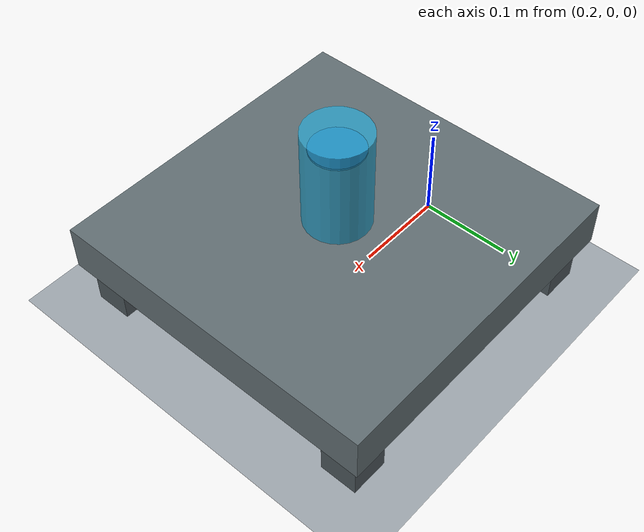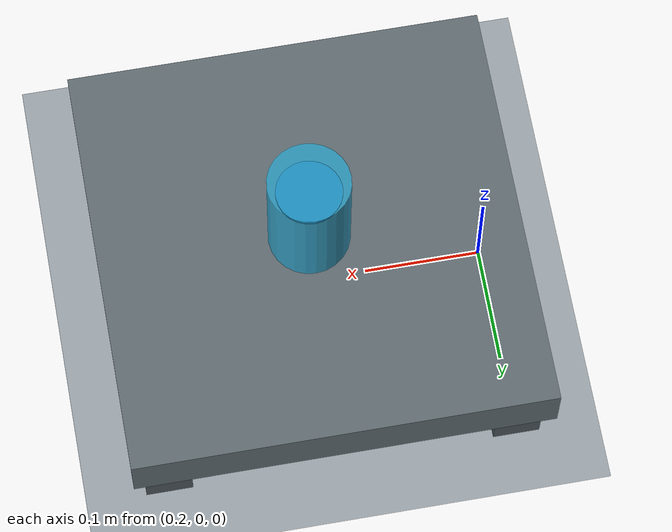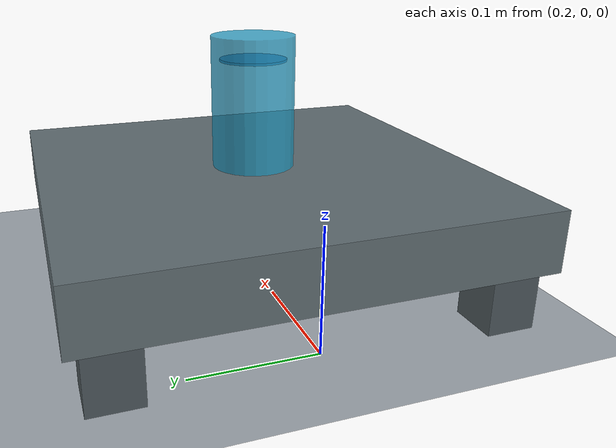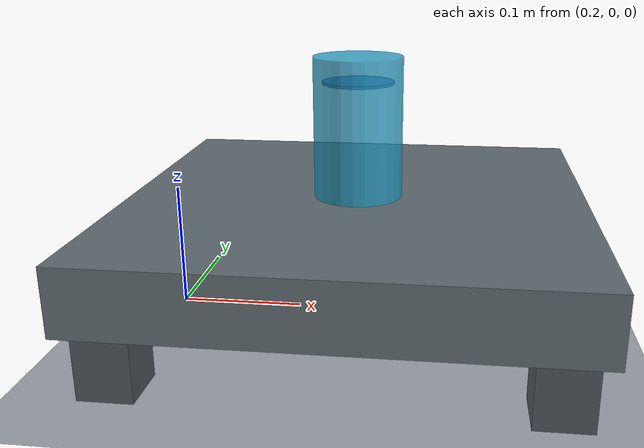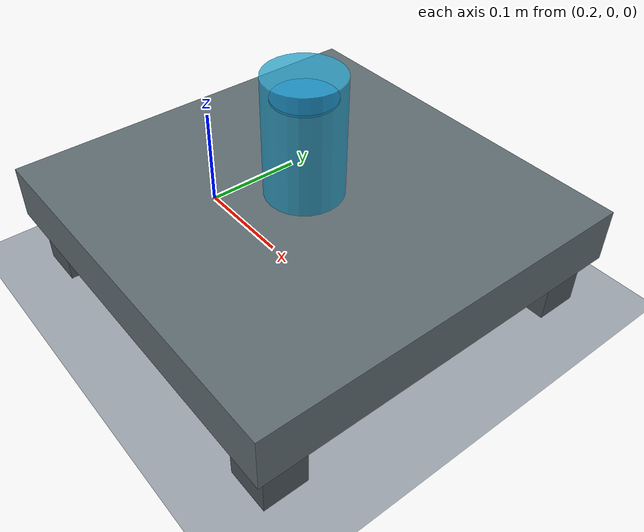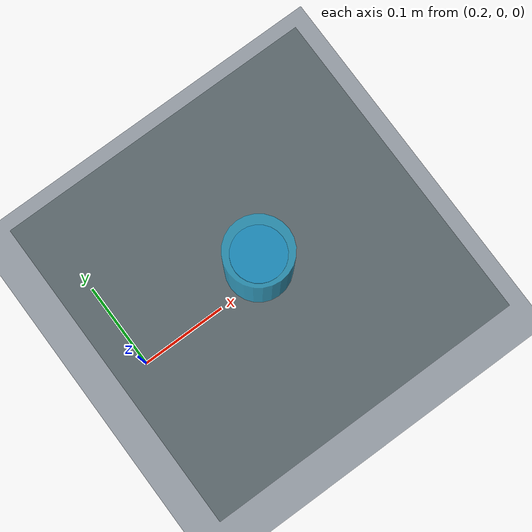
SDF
<?xml version="1.0"?>
<sdf version="1.9">
  <world name="empty">
    <physics name="1ms" type="ignored">
      <max_step_size>0.001</max_step_size>
      <real_time_factor>1.0</real_time_factor>
    </physics>
    <plugin filename="gz-sim-physics-system" name="gz::sim::systems::Physics"/>
    <plugin filename="gz-sim-user-commands-system" name="gz::sim::systems::UserCommands"/>
    <plugin filename="gz-sim-scene-broadcaster-system" name="gz::sim::systems::SceneBroadcaster"/>
    <plugin filename="gz-sim-sensors-system" name="gz::sim::systems::Sensors">
      <render_engine>ogre2</render_engine>
    </plugin>
    <scene>
      <ambient>0.55 0.55 0.55 1</ambient>
      <background>0.82 0.86 0.90 1</background>
      <shadows>true</shadows>
    </scene>
    <light name="sun" type="directional">
      <pose>0 0 3 0 0 0</pose>
      <cast_shadows>true</cast_shadows>
      <direction>-0.4 0.2 -1</direction>
      <diffuse>0.85 0.82 0.75 1</diffuse>
      <specular>0.25 0.25 0.25 1</specular>
    </light>
    <model name="ground_plane">
      <static>true</static>
      <link name="ground_link">
        <collision name="ground_collision">
          <geometry><plane><normal>0 0 1</normal><size>10 10</size></plane></geometry>
        </collision>
        <visual name="ground_visual">
          <geometry><plane><normal>0 0 1</normal><size>10 10</size></plane></geometry>
          <material>
            <ambient>0.52 0.55 0.58 1</ambient>
            <diffuse>0.62 0.65 0.68 1</diffuse>
          </material>
        </visual>
      </link>
    </model>
    <model name="work_table">
      <static>true</static>
      <pose>0.35 0 0 0 0 0</pose>
      <link name="table_link">
        <collision name="top_collision">
          <pose>0 0 0.075 0 0 0</pose>
          <geometry><box><size>0.36 0.36 0.05</size></box></geometry>
        </collision>
        <visual name="top_visual">
          <pose>0 0 0.075 0 0 0</pose>
          <geometry><box><size>0.36 0.36 0.05</size></box></geometry>
          <material><ambient>0.30 0.34 0.36 1</ambient><diffuse>0.38 0.43 0.45 1</diffuse></material>
        </visual>
        <collision name="leg_front_left_collision">
          <pose>-0.15 -0.15 0.025 0 0 0</pose>
          <geometry><box><size>0.04 0.04 0.05</size></box></geometry>
        </collision>
        <visual name="leg_front_left_visual">
          <pose>-0.15 -0.15 0.025 0 0 0</pose>
          <geometry><box><size>0.04 0.04 0.05</size></box></geometry>
          <material><ambient>0.24 0.27 0.29 1</ambient><diffuse>0.30 0.34 0.36 1</diffuse></material>
        </visual>
        <collision name="leg_front_right_collision">
          <pose>-0.15 0.15 0.025 0 0 0</pose>
          <geometry><box><size>0.04 0.04 0.05</size></box></geometry>
        </collision>
        <visual name="leg_front_right_visual">
          <pose>-0.15 0.15 0.025 0 0 0</pose>
          <geometry><box><size>0.04 0.04 0.05</size></box></geometry>
          <material><ambient>0.24 0.27 0.29 1</ambient><diffuse>0.30 0.34 0.36 1</diffuse></material>
        </visual>
        <collision name="leg_back_left_collision">
          <pose>0.15 -0.15 0.025 0 0 0</pose>
          <geometry><box><size>0.04 0.04 0.05</size></box></geometry>
        </collision>
        <visual name="leg_back_left_visual">
          <pose>0.15 -0.15 0.025 0 0 0</pose>
          <geometry><box><size>0.04 0.04 0.05</size></box></geometry>
          <material><ambient>0.24 0.27 0.29 1</ambient><diffuse>0.30 0.34 0.36 1</diffuse></material>
        </visual>
        <collision name="leg_back_right_collision">
          <pose>0.15 0.15 0.025 0 0 0</pose>
          <geometry><box><size>0.04 0.04 0.05</size></box></geometry>
        </collision>
        <visual name="leg_back_right_visual">
          <pose>0.15 0.15 0.025 0 0 0</pose>
          <geometry><box><size>0.04 0.04 0.05</size></box></geometry>
          <material><ambient>0.24 0.27 0.29 1</ambient><diffuse>0.30 0.34 0.36 1</diffuse></material>
        </visual>
      </link>
    </model>
    <model name="water_cup">
      <pose>0.35 0 0.155 0 0 0</pose>
      <link name="cup_link">
        <inertial>
          <mass>0.08</mass>
          <inertia>
            <ixx>0.0001052</ixx><ixy>0</ixy><ixz>0</ixz>
            <iyy>0.0001052</iyy><iyz>0</iyz><izz>0.000049</izz>
          </inertia>
        </inertial>
        <collision name="cup_collision">
          <geometry><cylinder><radius>0.035</radius><length>0.11</length></cylinder></geometry>
        </collision>
        <visual name="cup_glass">
          <geometry><cylinder><radius>0.035</radius><length>0.11</length></cylinder></geometry>
          <transparency>0.18</transparency>
          <material>
            <ambient>0.12 0.42 0.56 1</ambient>
            <diffuse>0.18 0.66 0.82 1</diffuse>
            <specular>0.55 0.65 0.72 1</specular>
          </material>
        </visual>
        <visual name="water_surface">
          <pose>0 0 0.035 0 0 0</pose>
          <geometry><cylinder><radius>0.028</radius><length>0.002</length></cylinder></geometry>
          <material>
            <ambient>0.05 0.24 0.48 1</ambient>
            <diffuse>0.08 0.38 0.72 1</diffuse>
          </material>
        </visual>
      </link>
    </model>
  </world>
</sdf>
